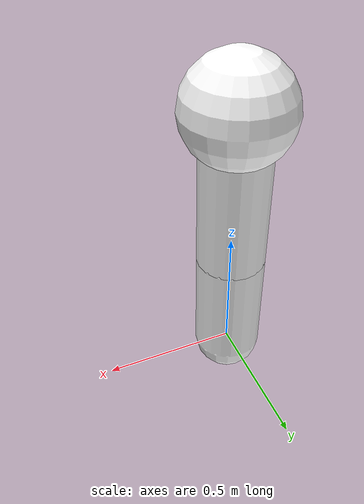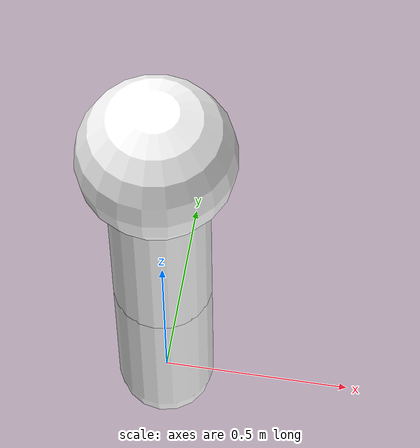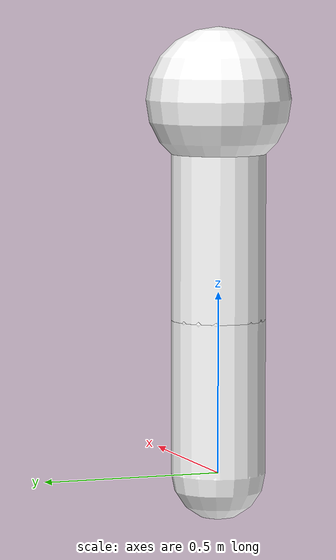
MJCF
<mujoco model="double_cartpole">
  <compiler coordinate="local" inertiafromgeom="true"/>
  <option timestep="0.05" gravity="1.0000000000000001e-05 0 -9.8100000000000005" integrator="Euler"/>
  <size nstack="3000"/>
  <default>
    <default class="/">
      <joint damping="0.1"/>
      <geom contype="3" conaffinity="3" rgba="0.69999999999999996 0.69999999999999996 0 1" friction="0 0 0"/>
    </default>
  </default>
  <worldbody>
    <camera name="rgb" class="/" mode="fixed" pos="0 -4 0" euler="90 0 0"/>
    <body name="cart" pos="0 0 0">
      <joint name="slider" class="/" type="slide" pos="0 0 0" axis="1 0 0" limited="true" range="-100 100" margin="0.01"/>
      <geom name="gcart" class="/" type="capsule" size="0.01 0.01" rgba="1 1 1 0" mass="1.0" pos="0 0 0" quat="0.70699999999999996 0 0.70699999999999996 0"/>
      <body name="pole1" pos="0 0 0">
        <joint name="hinge" class="/" type="hinge" pos="0 0 0" axis="0 1 0" stiffness="0.0"/>
        <geom name="gpole1" class="/" type="capsule" contype="2" size="0.12970488195809254" rgba="1 1 1 1" mass="0.5" fromto="0 0 0 0 0 0.42424996825379435"/>
        <body name="pole2" pos="0 0 0.42424996825379435">
          <site name="hinge2" class="/" size="0.01 0.01" pos="0 0 0"/>
          <joint name="hinge2" class="/" type="hinge" pos="0 0 0" axis="0 1 0"/>
          <geom name="gpole2" class="/" type="capsule" contype="1" size="0.12970488195809254" rgba="1 1 1 1" mass="0.5" fromto="0 0 0 0 0 0.60492950469529572"/>
          <body name="mass" pos="0 0 0.60492950469529572">
            <geom name="gmass" class="/" type="sphere" contype="3" conaffinity="3" size="0.19910082267355123 0.19910082267355123" rgba="1 1 1 1" mass="0.0"/>
          </body>
        </body>
      </body>
    </body>
  </worldbody>
  <actuator>
    <motor name="slide" class="/" ctrllimited="true" ctrlrange="-1 1" gear="40" joint="slider"/>
  </actuator>
</mujoco>
